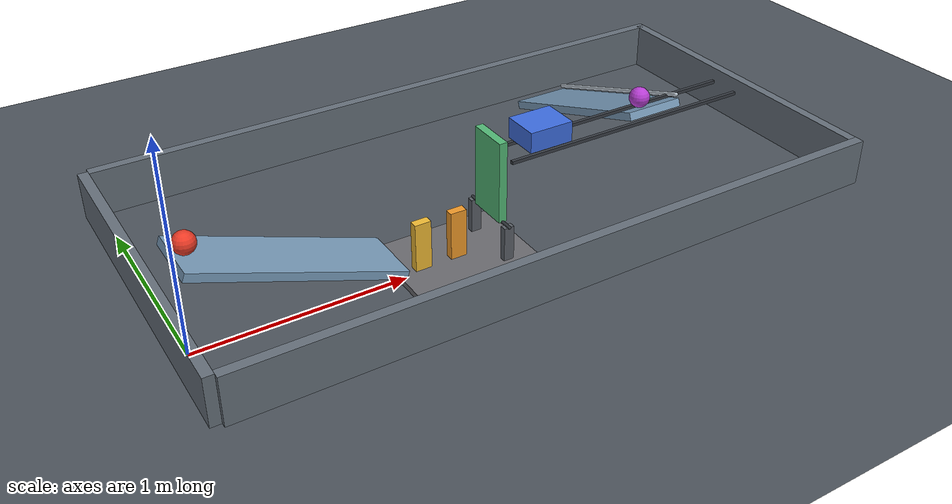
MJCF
<mujoco model="gravity_domino_flap_chain">
  <compiler angle="degree" autolimits="true"/>
  <option timestep="0.002" gravity="0 0 -9.81" integrator="implicitfast" solver="Newton" iterations="100" cone="elliptic"/>
  <size njmax="2000" nconmax="500"/>

  <!-- MuJoCo uses compliant contacts rather than a restitution attribute.
       A damping ratio of 0.690107 approximates restitution 0.05. -->
  <!-- Sliding friction is 0.70 throughout. Small rolling friction helps
       the balls settle after the sequence. All initial velocities are zero. -->

  <worldbody>
    <light name="overhead_light" pos="1.5 -2 4" dir="0 0 -1"/>
    <camera name="overview" pos="4.4 -5.5 3.2" xyaxes="0.884 0.468 0 -0.203 0.383 0.901"/>

    <geom name="floor" type="plane" size="6 4 0.1" friction="0.70 0.005 0.002" solref="0.006 0.690107" solimp="0.95 0.99 0.001" rgba="0.30 0.33 0.36 1"/>

    <!-- Ramp frames have their origins at the centers of their top surfaces.
         Their top surfaces are exactly 1.00 m long and 0.30 m wide.
         Both low ends are at z = 0.15 m. -->
    <body name="ramp1" pos="0.469846310 0 0.321010072" quat="0.984807753 0 0.173648178 0">
      <geom name="ramp1_surface" type="box" pos="0 0 -0.02" size="0.50 0.15 0.02" friction="0.70 0.005 0.002" solref="0.006 0.690107" solimp="0.95 0.99 0.001" rgba="0.48 0.62 0.74 1"/>
    </body>

    <body name="ball1" pos="0.054688712 0 0.525323969">
      <freejoint name="ball1_free"/>
      <geom name="ball1_sphere" type="sphere" size="0.05" mass="0.20" condim="6" friction="0.70 0.005 0.002" solref="0.006 0.690107" solimp="0.95 0.99 0.001" rgba="0.92 0.23 0.15 1"/>
    </body>

    <!-- The rear face of domino1 is 0.10 m beyond ramp1's low edge.
         A 0.03 m plinth keeps both dominoes supported during their impacts. -->
    <body name="domino_platform" pos="1.269692621 0 0.015">
      <geom name="domino_platform_top" type="box" size="0.31 0.25 0.015" friction="0.70 0.005 0.002" solref="0.006 0.690107" solimp="0.95 0.99 0.001" rgba="0.42 0.42 0.44 1"/>
    </body>

    <body name="domino1" pos="1.079692621 0 0.15">
      <freejoint name="domino1_free"/>
      <geom name="domino1_box" type="box" size="0.04 0.02 0.12" mass="0.25" friction="0.70 0.005 0.002" solref="0.006 0.690107" solimp="0.95 0.99 0.001" rgba="0.94 0.73 0.20 1"/>
    </body>

    <body name="domino2" pos="1.259692621 0 0.15">
      <freejoint name="domino2_free"/>
      <geom name="domino2_box" type="box" size="0.04 0.02 0.12" mass="0.25" friction="0.70 0.005 0.002" solref="0.006 0.690107" solimp="0.95 0.99 0.001" rgba="0.94 0.60 0.16 1"/>
    </body>

    <body name="flap_support" pos="1.439692621 0 0">
      <geom name="flap_support_left" type="box" pos="0 -0.14 0.10" size="0.025 0.015 0.10" friction="0.70 0.005 0.002" solref="0.006 0.690107" solimp="0.95 0.99 0.001" rgba="0.35 0.37 0.40 1"/>
      <geom name="flap_support_right" type="box" pos="0 0.14 0.10" size="0.025 0.015 0.10" friction="0.70 0.005 0.002" solref="0.006 0.690107" solimp="0.95 0.99 0.001" rgba="0.35 0.37 0.40 1"/>
      <geom name="flap_support_axle" type="capsule" fromto="0 -0.155 0.20 0 0.155 0.20" size="0.008" contype="0" conaffinity="0" rgba="0.20 0.22 0.24 1"/>
    </body>

    <body name="flap1" pos="1.439692621 0 0.20">
      <joint name="flap1_hinge" type="hinge" axis="0 1 0" damping="0.04" limited="true" range="0 65" solreflimit="0.004 1" solimplimit="0.999 0.999 0.001"/>
      <geom name="flap1_panel" type="box" pos="0 0 0.20" size="0.02 0.10 0.20" mass="0.30" friction="0.70 0.005 0.002" solref="0.006 0.690107" solimp="0.95 0.99 0.001" rgba="0.32 0.72 0.46 1"/>
    </body>

    <!-- The elevated horizontal slide clears ramp2's surface.
         The flap strikes the cart before its upper edge swings below it. -->
    <body name="cart1" pos="1.699692621 0 0.55">
      <joint name="cart1_slide" type="slide" axis="1 0 0" damping="0.20" limited="true" range="0 0.90" solreflimit="0.004 1" solimplimit="0.999 0.999 0.001"/>
      <geom name="cart1_box" type="box" size="0.11 0.09 0.05" mass="0.50" friction="0.70 0.005 0.002" solref="0.006 0.690107" solimp="0.95 0.99 0.001" rgba="0.24 0.43 0.88 1"/>
    </body>

    <!-- Decorative guide rails do not introduce unintended contacts. -->
    <body name="cart_guide" pos="2.149692621 0 0.475">
      <geom name="cart_guide_left" type="box" pos="0 -0.075 0" size="0.65 0.008 0.008" contype="0" conaffinity="0" rgba="0.22 0.24 0.27 1"/>
      <geom name="cart_guide_right" type="box" pos="0 0.075 0" size="0.65 0.008 0.008" contype="0" conaffinity="0" rgba="0.22 0.24 0.27 1"/>
    </body>

    <body name="ramp2" pos="2.359692621 0.469846310 0.321010072" quat="0.984807753 -0.173648178 0 0">
      <geom name="ramp2_surface" type="box" pos="0 0 -0.02" size="0.15 0.50 0.02" friction="0.70 0.005 0.002" solref="0.006 0.690107" solimp="0.95 0.99 0.001" rgba="0.48 0.62 0.74 1"/>
      <geom name="ramp2_retaining_lip" type="capsule" fromto="-0.145 -0.417573593 0.009 -0.020 -0.417573593 0.009" size="0.009" friction="0.70 0.005 0.002" solref="0.006 0.690107" solimp="0.95 0.99 0.001" rgba="0.72 0.76 0.80 1"/>
      <geom name="ramp2_far_side_rail" type="capsule" fromto="0.145 -0.49 0.018 0.145 0.49 0.018" size="0.010" friction="0.70 0.005 0.002" solref="0.006 0.690107" solimp="0.95 0.99 0.001" rgba="0.72 0.76 0.80 1"/>
    </body>

    <!-- Cart1's initial front face is at x = 1.809692621.
         Ball2's near surface is at x = 2.259692621: a 0.45 m gap. -->
    <body name="ball2" pos="2.309692621 0.054688712 0.525323969">
      <freejoint name="ball2_free"/>
      <geom name="ball2_sphere" type="sphere" size="0.05" mass="0.20" condim="6" friction="0.70 0.005 0.002" solref="0.006 0.690107" solimp="0.95 0.99 0.001" rgba="0.72 0.24 0.83 1"/>
    </body>

    <!-- Low catch walls contain released balls without obstructing the
         domino chain, the elevated cart, or either ramp's running surface. -->
    <body name="ball_catch_walls" pos="0 0 0">
      <geom name="ball_catch_end" type="box" pos="3.30 0.40 0.12" size="0.025 0.85 0.12" friction="0.70 0.005 0.002" solref="0.006 0.690107" solimp="0.95 0.99 0.001" rgba="0.40 0.44 0.48 1"/>
      <geom name="ball_catch_near_side" type="box" pos="1.65 -0.45 0.12" size="1.675 0.025 0.12" friction="0.70 0.005 0.002" solref="0.006 0.690107" solimp="0.95 0.99 0.001" rgba="0.40 0.44 0.48 1"/>
      <geom name="ball_catch_far_side" type="box" pos="1.65 1.25 0.12" size="1.675 0.025 0.12" friction="0.70 0.005 0.002" solref="0.006 0.690107" solimp="0.95 0.99 0.001" rgba="0.40 0.44 0.48 1"/>
      <geom name="ball_catch_back" type="box" pos="-0.05 0.40 0.12" size="0.025 0.85 0.12" friction="0.70 0.005 0.002" solref="0.006 0.690107" solimp="0.95 0.99 0.001" rgba="0.40 0.44 0.48 1"/>
    </body>
  </worldbody>

  <contact>
    <exclude body1="flap1" body2="flap_support"/>
  </contact>

  <keyframe>
    <key name="start" time="0"/>
  </keyframe>
</mujoco>
